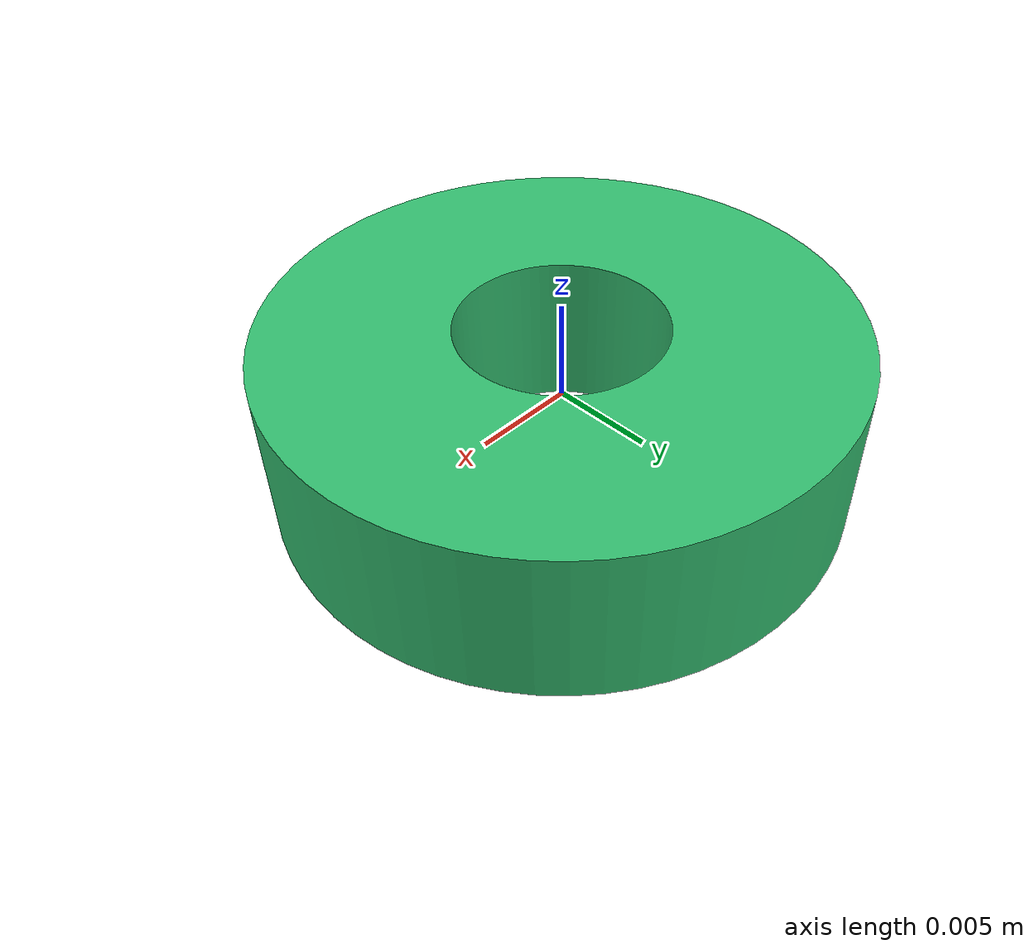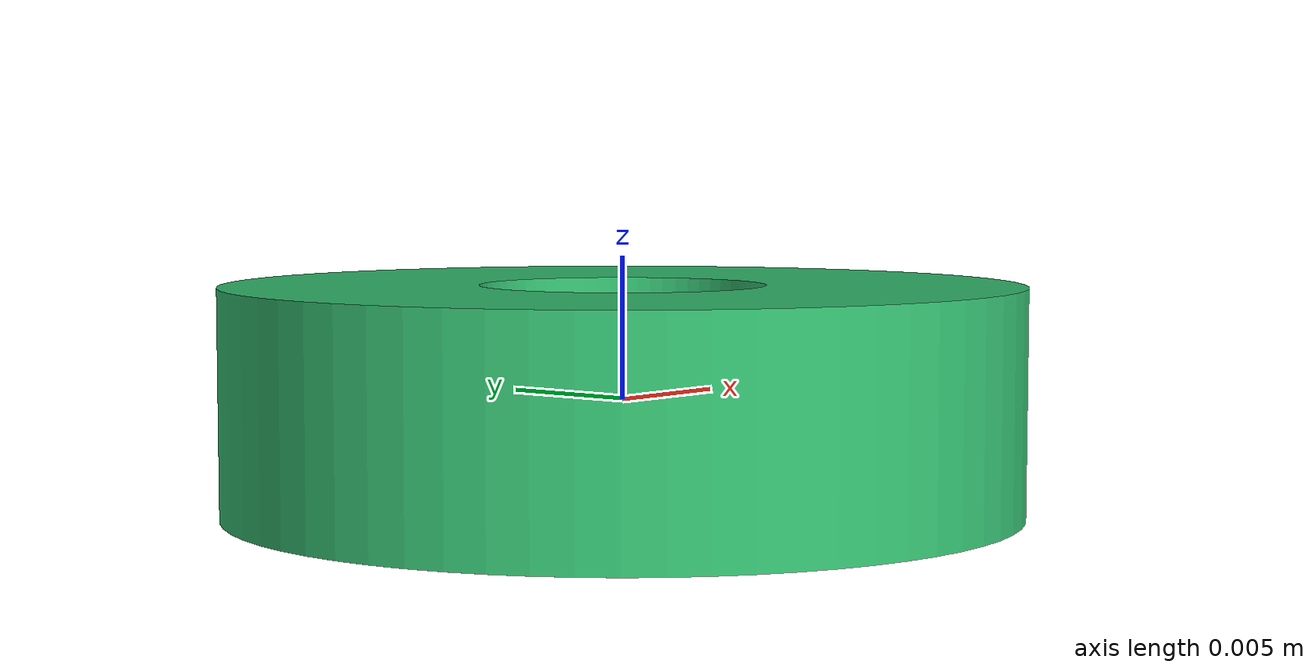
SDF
<sdf version="1.6">
  <model name="hanoi_ring_small">
    <static>false</static>
    <pose>0 0 0 0 0 0</pose>
    <link name="body">
      <inertial>
        <mass>0.009</mass>
        <inertia>
          <ixx>5.452500000000001e-07</ixx>
          <iyy>5.452500000000001e-07</iyy>
          <izz>9.945e-07</izz>
          <ixy>0</ixy>
          <ixz>0</ixz>
          <iyz>0</iyz>
        </inertia>
      </inertial>
      <collision name="collision_0">
        <pose>0.0095 0.0 0 0 0 0.0</pose>
        <geometry>
          <box>
            <size>0.009000000000000001 0.0036862699324470834 0.008</size>
          </box>
        </geometry>
        <surface>
          <friction>
            <ode>
              <mu>0.8</mu>
              <mu2>0.8</mu2>
            </ode>
          </friction>
        </surface>
      </collision>
      <collision name="collision_1">
        <pose>0.009176295349746148 0.002458780928473947 0 0 0 0.2617993877991494</pose>
        <geometry>
          <box>
            <size>0.009000000000000001 0.0036862699324470834 0.008</size>
          </box>
        </geometry>
        <surface>
          <friction>
            <ode>
              <mu>0.8</mu>
              <mu2>0.8</mu2>
            </ode>
          </friction>
        </surface>
      </collision>
      <collision name="collision_2">
        <pose>0.008227241335952167 0.004749999999999999 0 0 0 0.5235987755982988</pose>
        <geometry>
          <box>
            <size>0.009000000000000001 0.0036862699324470834 0.008</size>
          </box>
        </geometry>
        <surface>
          <friction>
            <ode>
              <mu>0.8</mu>
              <mu2>0.8</mu2>
            </ode>
          </friction>
        </surface>
      </collision>
      <collision name="collision_3">
        <pose>0.006717514421272202 0.006717514421272201 0 0 0 0.7853981633974483</pose>
        <geometry>
          <box>
            <size>0.009000000000000001 0.0036862699324470834 0.008</size>
          </box>
        </geometry>
        <surface>
          <friction>
            <ode>
              <mu>0.8</mu>
              <mu2>0.8</mu2>
            </ode>
          </friction>
        </surface>
      </collision>
      <collision name="collision_4">
        <pose>0.004750000000000001 0.008227241335952167 0 0 0 1.0471975511965976</pose>
        <geometry>
          <box>
            <size>0.009000000000000001 0.0036862699324470834 0.008</size>
          </box>
        </geometry>
        <surface>
          <friction>
            <ode>
              <mu>0.8</mu>
              <mu2>0.8</mu2>
            </ode>
          </friction>
        </surface>
      </collision>
      <collision name="collision_5">
        <pose>0.002458780928473947 0.009176295349746148 0 0 0 1.3089969389957472</pose>
        <geometry>
          <box>
            <size>0.009000000000000001 0.0036862699324470834 0.008</size>
          </box>
        </geometry>
        <surface>
          <friction>
            <ode>
              <mu>0.8</mu>
              <mu2>0.8</mu2>
            </ode>
          </friction>
        </surface>
      </collision>
      <collision name="collision_6">
        <pose>5.817072295949927e-19 0.0095 0 0 0 1.5707963267948966</pose>
        <geometry>
          <box>
            <size>0.009000000000000001 0.0036862699324470834 0.008</size>
          </box>
        </geometry>
        <surface>
          <friction>
            <ode>
              <mu>0.8</mu>
              <mu2>0.8</mu2>
            </ode>
          </friction>
        </surface>
      </collision>
      <collision name="collision_7">
        <pose>-0.002458780928473946 0.009176295349746148 0 0 0 1.832595714594046</pose>
        <geometry>
          <box>
            <size>0.009000000000000001 0.0036862699324470834 0.008</size>
          </box>
        </geometry>
        <surface>
          <friction>
            <ode>
              <mu>0.8</mu>
              <mu2>0.8</mu2>
            </ode>
          </friction>
        </surface>
      </collision>
      <collision name="collision_8">
        <pose>-0.004749999999999998 0.008227241335952167 0 0 0 2.0943951023931953</pose>
        <geometry>
          <box>
            <size>0.009000000000000001 0.0036862699324470834 0.008</size>
          </box>
        </geometry>
        <surface>
          <friction>
            <ode>
              <mu>0.8</mu>
              <mu2>0.8</mu2>
            </ode>
          </friction>
        </surface>
      </collision>
      <collision name="collision_9">
        <pose>-0.006717514421272201 0.006717514421272202 0 0 0 2.356194490192345</pose>
        <geometry>
          <box>
            <size>0.009000000000000001 0.0036862699324470834 0.008</size>
          </box>
        </geometry>
        <surface>
          <friction>
            <ode>
              <mu>0.8</mu>
              <mu2>0.8</mu2>
            </ode>
          </friction>
        </surface>
      </collision>
      <collision name="collision_10">
        <pose>-0.008227241335952167 0.004749999999999999 0 0 0 2.6179938779914944</pose>
        <geometry>
          <box>
            <size>0.009000000000000001 0.0036862699324470834 0.008</size>
          </box>
        </geometry>
        <surface>
          <friction>
            <ode>
              <mu>0.8</mu>
              <mu2>0.8</mu2>
            </ode>
          </friction>
        </surface>
      </collision>
      <collision name="collision_11">
        <pose>-0.009176295349746148 0.0024587809284739495 0 0 0 2.8797932657906435</pose>
        <geometry>
          <box>
            <size>0.009000000000000001 0.0036862699324470834 0.008</size>
          </box>
        </geometry>
        <surface>
          <friction>
            <ode>
              <mu>0.8</mu>
              <mu2>0.8</mu2>
            </ode>
          </friction>
        </surface>
      </collision>
      <collision name="collision_12">
        <pose>-0.0095 1.1634144591899855e-18 0 0 0 3.141592653589793</pose>
        <geometry>
          <box>
            <size>0.009000000000000001 0.0036862699324470834 0.008</size>
          </box>
        </geometry>
        <surface>
          <friction>
            <ode>
              <mu>0.8</mu>
              <mu2>0.8</mu2>
            </ode>
          </friction>
        </surface>
      </collision>
      <collision name="collision_13">
        <pose>-0.009176295349746148 -0.0024587809284739473 0 0 0 3.4033920413889427</pose>
        <geometry>
          <box>
            <size>0.009000000000000001 0.0036862699324470834 0.008</size>
          </box>
        </geometry>
        <surface>
          <friction>
            <ode>
              <mu>0.8</mu>
              <mu2>0.8</mu2>
            </ode>
          </friction>
        </surface>
      </collision>
      <collision name="collision_14">
        <pose>-0.008227241335952169 -0.004749999999999997 0 0 0 3.665191429188092</pose>
        <geometry>
          <box>
            <size>0.009000000000000001 0.0036862699324470834 0.008</size>
          </box>
        </geometry>
        <surface>
          <friction>
            <ode>
              <mu>0.8</mu>
              <mu2>0.8</mu2>
            </ode>
          </friction>
        </surface>
      </collision>
      <collision name="collision_15">
        <pose>-0.006717514421272205 -0.006717514421272198 0 0 0 3.926990816987241</pose>
        <geometry>
          <box>
            <size>0.009000000000000001 0.0036862699324470834 0.008</size>
          </box>
        </geometry>
        <surface>
          <friction>
            <ode>
              <mu>0.8</mu>
              <mu2>0.8</mu2>
            </ode>
          </friction>
        </surface>
      </collision>
      <collision name="collision_16">
        <pose>-0.004750000000000004 -0.008227241335952165 0 0 0 4.1887902047863905</pose>
        <geometry>
          <box>
            <size>0.009000000000000001 0.0036862699324470834 0.008</size>
          </box>
        </geometry>
        <surface>
          <friction>
            <ode>
              <mu>0.8</mu>
              <mu2>0.8</mu2>
            </ode>
          </friction>
        </surface>
      </collision>
      <collision name="collision_17">
        <pose>-0.002458780928473946 -0.009176295349746148 0 0 0 4.4505895925855405</pose>
        <geometry>
          <box>
            <size>0.009000000000000001 0.0036862699324470834 0.008</size>
          </box>
        </geometry>
        <surface>
          <friction>
            <ode>
              <mu>0.8</mu>
              <mu2>0.8</mu2>
            </ode>
          </friction>
        </surface>
      </collision>
      <collision name="collision_18">
        <pose>-1.7451216887849783e-18 -0.0095 0 0 0 4.71238898038469</pose>
        <geometry>
          <box>
            <size>0.009000000000000001 0.0036862699324470834 0.008</size>
          </box>
        </geometry>
        <surface>
          <friction>
            <ode>
              <mu>0.8</mu>
              <mu2>0.8</mu2>
            </ode>
          </friction>
        </surface>
      </collision>
      <collision name="collision_19">
        <pose>0.002458780928473943 -0.00917629534974615 0 0 0 4.974188368183839</pose>
        <geometry>
          <box>
            <size>0.009000000000000001 0.0036862699324470834 0.008</size>
          </box>
        </geometry>
        <surface>
          <friction>
            <ode>
              <mu>0.8</mu>
              <mu2>0.8</mu2>
            </ode>
          </friction>
        </surface>
      </collision>
      <collision name="collision_20">
        <pose>0.004750000000000001 -0.008227241335952167 0 0 0 5.235987755982989</pose>
        <geometry>
          <box>
            <size>0.009000000000000001 0.0036862699324470834 0.008</size>
          </box>
        </geometry>
        <surface>
          <friction>
            <ode>
              <mu>0.8</mu>
              <mu2>0.8</mu2>
            </ode>
          </friction>
        </surface>
      </collision>
      <collision name="collision_21">
        <pose>0.006717514421272199 -0.006717514421272203 0 0 0 5.497787143782138</pose>
        <geometry>
          <box>
            <size>0.009000000000000001 0.0036862699324470834 0.008</size>
          </box>
        </geometry>
        <surface>
          <friction>
            <ode>
              <mu>0.8</mu>
              <mu2>0.8</mu2>
            </ode>
          </friction>
        </surface>
      </collision>
      <collision name="collision_22">
        <pose>0.008227241335952165 -0.004750000000000004 0 0 0 5.759586531581287</pose>
        <geometry>
          <box>
            <size>0.009000000000000001 0.0036862699324470834 0.008</size>
          </box>
        </geometry>
        <surface>
          <friction>
            <ode>
              <mu>0.8</mu>
              <mu2>0.8</mu2>
            </ode>
          </friction>
        </surface>
      </collision>
      <collision name="collision_23">
        <pose>0.009176295349746146 -0.0024587809284739547 0 0 0 6.021385919380436</pose>
        <geometry>
          <box>
            <size>0.009000000000000001 0.0036862699324470834 0.008</size>
          </box>
        </geometry>
        <surface>
          <friction>
            <ode>
              <mu>0.8</mu>
              <mu2>0.8</mu2>
            </ode>
          </friction>
        </surface>
      </collision>
      <visual name="ring_visual">
        <geometry>
          <mesh>
            <uri>model://hanoi_ring_small/meshes/ring.stl</uri>
          </mesh>
        </geometry>
        <material>
          <ambient>0.2 0.75 0.44 1</ambient>
          <diffuse>0.2 0.75 0.44 1</diffuse>
        </material>
      </visual>
    </link>
  </model>
</sdf>
